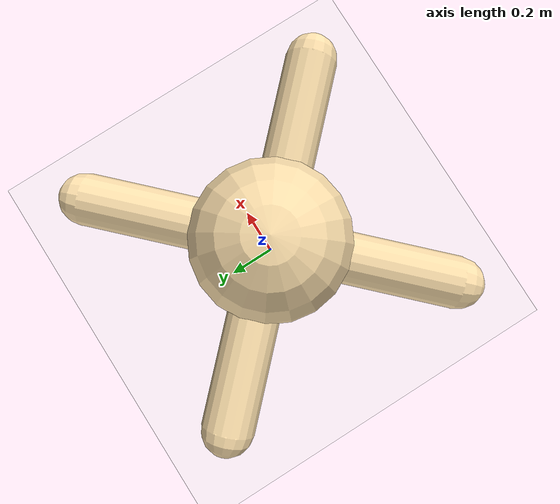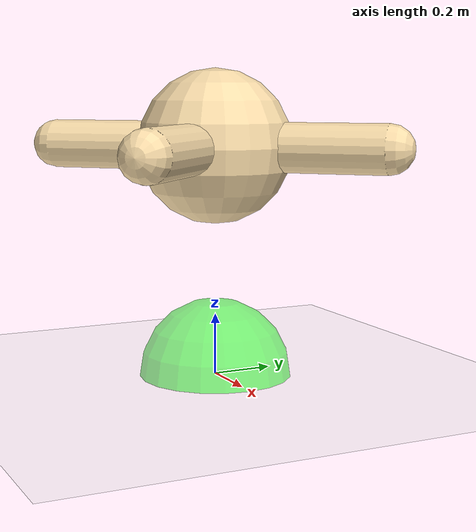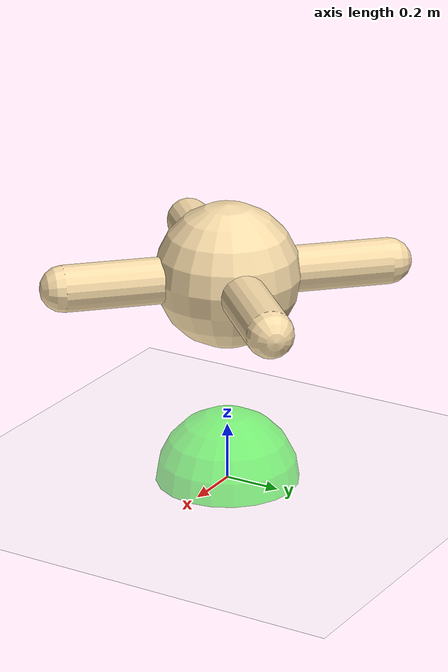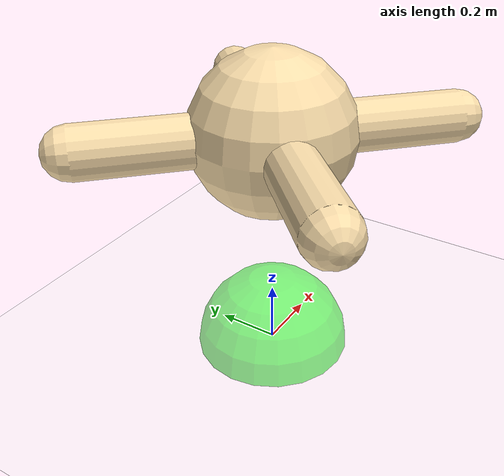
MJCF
<mujoco model="mutiagent_world">
  <compiler angle="degree" coordinate="local" inertiafromgeom="true" />

  <option integrator="RK4" timestep="0.003" solver="PGS" iterations="1000" />

  <default>
    <joint armature="1" damping="1" limited="true" />
  <default class="agent0"><joint armature="1" damping="1" limited="true" />
    <geom conaffinity="0" condim="3" density="5.0" friction="1 0.5 0.5" margin="0.01" rgba="0.98 0.87 0.67 1" material="geom" contype="1" />
  </default></default>

  <visual>
    <headlight ambient=".1 .1 .1" diffuse=".6 .6 .6" specular="0.3 0.3 0.3" />
    <map znear=".01" />
    <quality shadowsize="16384" />
  </visual>

  <asset>
    <texture builtin="gradient" height="100" rgb1=".4 .5 .6" rgb2="0 0 0" type="skybox" width="100" />
    <texture builtin="flat" height="1278" mark="cross" markrgb="0 0 0" name="texgeom" random="0.01" rgb1="0.8 0.6 0.4" rgb2="0.8 0.6 0.4" type="cube" width="127" />
    <texture builtin="checker" height="100" name="texplane" rgb1="0 0 0" rgb2="0.8 0.8 0.8" type="2d" width="100" />
    <texture name="MatPlane" type="2d" builtin="checker" rgb1=".5 .5 .5" rgb2=".5 .5 .5" width="300" height="300" mark="edge" markrgb="0.1 0.1 0.1" />
    <material name="MatPlane" texture="MatPlane" texrepeat="2 2" texuniform="true" reflectance=".2" />
    <material name="geom" texture="texgeom" texuniform="true" />
  </asset>

  <worldbody>
    <light cutoff="100" diffuse="1 1 1" dir="-0 0 -1.3" directional="true" exponent="1" pos="0 0 1.3" specular=".1 .1 .1" />
    <geom contype="1" conaffinity="1" friction="1 .1 .1" condim="3" material="MatPlane" name="floor" pos="0 0 0" rgba="1 1 1 1" size="20 20 0.125" type="plane" />

    <body name="goal" pos="0 0 0" euler="0 0 0">
      <geom pos="0 0 0" size="0.25" type="sphere" rgba="0 1 0 0.5" />
    </body>
  <body name="agent0/0" pos="0 0 0.75" euler="0 0 180">
      <geom pos="0 0 0" size="0.25" type="sphere" class="agent0" name="agent0/anon787846415" />
      <joint armature="0" damping="0" limited="false" margin="0.01" name="agent0/root" pos="0 0 0" range="-30 30" type="free" />
      <body name="agent0/1" pos="0 0 0">
          <geom fromto="0.0 0.0 0.0 0.4 0.4 0.0" size="0.08" type="capsule" class="agent0" name="agent0/anon2563451925" />
          <joint axis="-1 1 0" name="agent0/1_joint" pos="0.0 0.0 0.0" range="-30 30" type="hinge" />
      </body>
      <body name="agent0/2" pos="0 0 0">
          <geom fromto="0.0 0.0 0.0 -0.4 0.4 0.0" size="0.08" type="capsule" class="agent0" name="agent0/anon9019323607" />
          <joint axis="-1 -1 0" name="agent0/2_joint" pos="0.0 0.0 0.0" range="-30 30" type="hinge" />
      </body>
      <body name="agent0/3" pos="0 0 0">
          <geom fromto="0.0 0.0 0.0 -0.4 -0.4 0.0" size="0.08" type="capsule" class="agent0" name="agent0/anon4537253173" />
          <joint axis="1 -1 0" name="agent0/3_joint" pos="0.0 0.0 0.0" range="-30 30" type="hinge" />
      </body>
      <body name="agent0/4" pos="0 0 0">
          <geom fromto="0.0 0.0 0.0 0.4 -0.4 0.0" size="0.08" type="capsule" class="agent0" name="agent0/anon7395928408" />
          <joint axis="1 1 0" name="agent0/4_joint" pos="0.0 0.0 0.0" range="-30 30" type="hinge" />
      </body>
    </body>

  </worldbody>
<actuator>
    <motor ctrllimited="true" ctrlrange="-1.0 1.0" joint="agent0/1_joint" gear="150" name="agent0/1_joint" class="agent0" />
    <motor ctrllimited="true" ctrlrange="-1.0 1.0" joint="agent0/2_joint" gear="150" name="agent0/2_joint" class="agent0" />
    <motor ctrllimited="true" ctrlrange="-1.0 1.0" joint="agent0/3_joint" gear="150" name="agent0/3_joint" class="agent0" />
    <motor ctrllimited="true" ctrlrange="-1.0 1.0" joint="agent0/4_joint" gear="150" name="agent0/4_joint" class="agent0" />
  </actuator>
  </mujoco>
